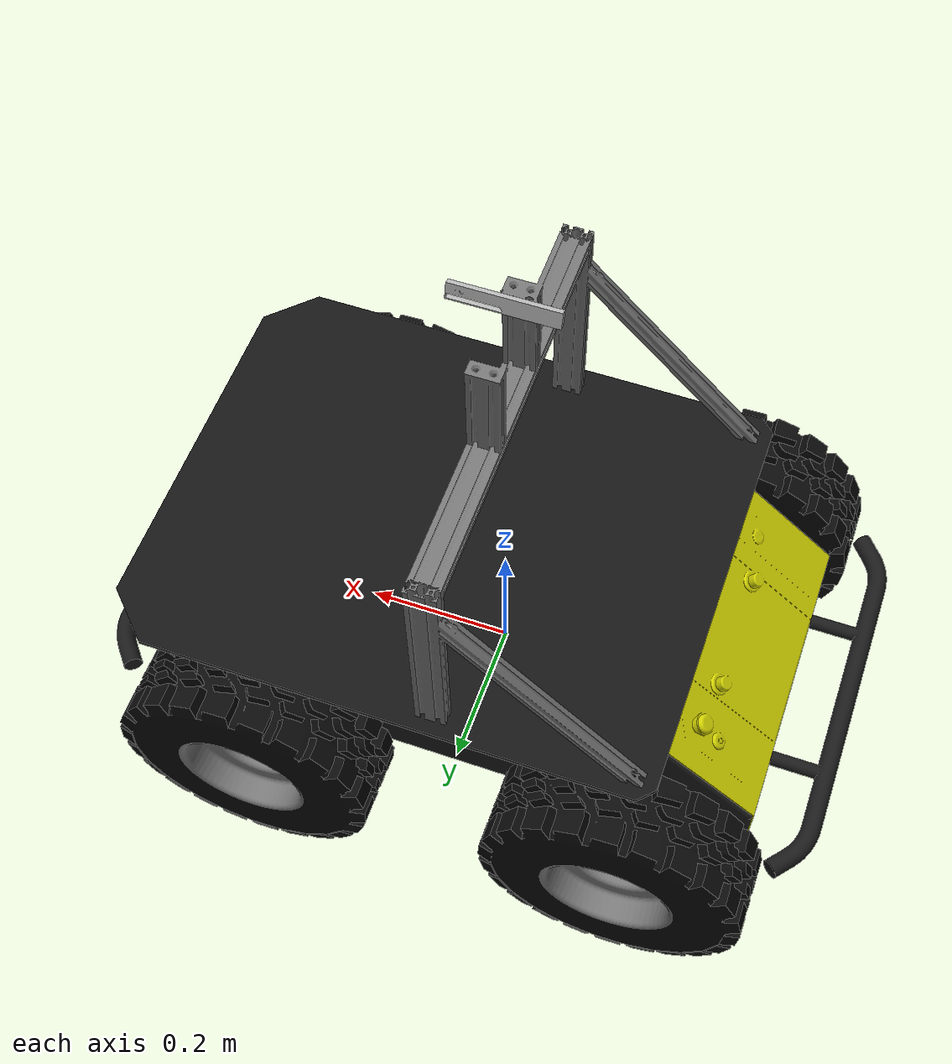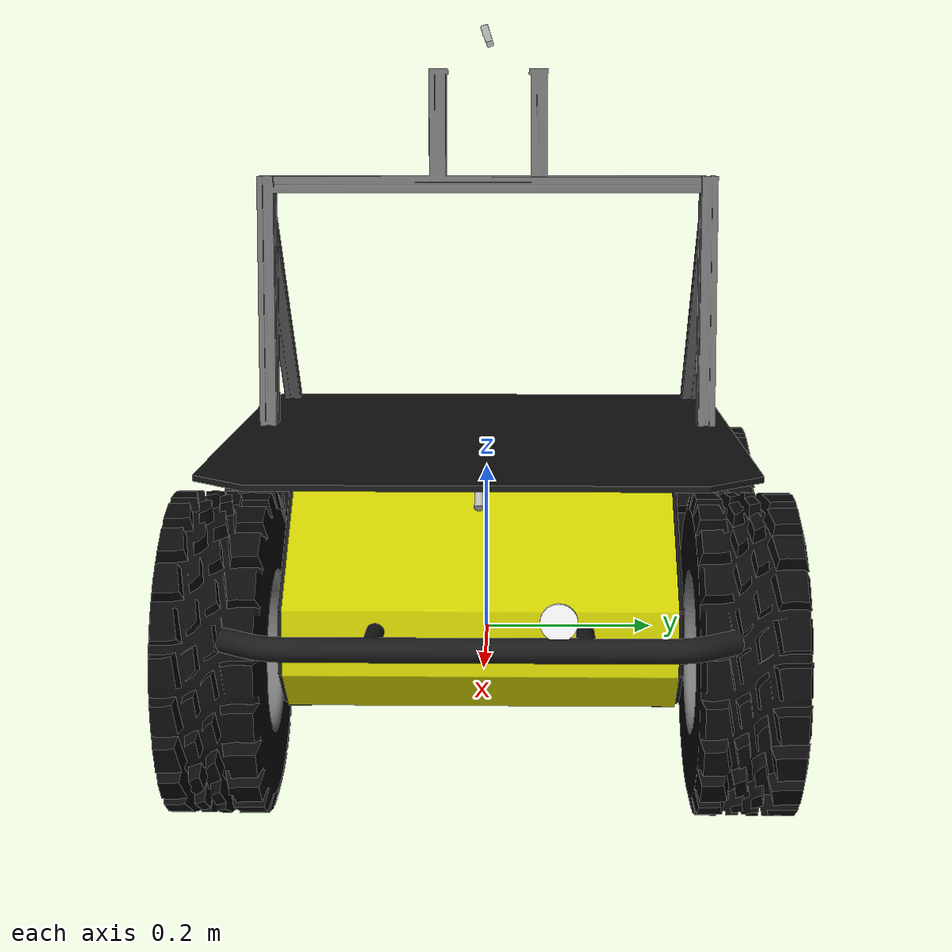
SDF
<?xml version='1.0' encoding='utf-8'?>
<sdf version="1.6">
  <model name="costar_husky_sensor_config_1">
    <link name="base_link">
      <pose frame="">0 0 0 0 -0 0</pose>
      <inertial>
        <pose frame="">0 0 0.062329 0 -0 0</pose>
        <mass>46.064</mass>
        <inertia>
          <ixx>0.615397</ixx>
          <ixy>-0.0240585</ixy>
          <ixz>-0.120749</ixz>
          <iyy>1.75388</iyy>
          <iyz>-0.0028322</iyz>
          <izz>2.03641</izz>
        </inertia>
      </inertial>
      <collision name="base_link_collision">
        <pose frame="">0 0 0.12 0 0 0</pose>
        <geometry>
          <box>
            <size>0.9874 0.5709 0.05</size>
          </box>
        </geometry>
      </collision>
      <collision name="base_link_collision_bottom">
        <pose frame="">0 0 0.046 0 0 0</pose>
        <geometry>
          <box>
            <size>0.80 0.5709 0.095</size>
          </box>
        </geometry>
      </collision>
      <collision name="base_link_collision_1">
        <pose frame="">0 0 0.185625 0 -0 0</pose>
        <geometry>
          <box>
            <size>0.78992 0.5709 0.12375</size>
          </box>
        </geometry>
      </collision>
      <collision name="base_link_fixed_joint_lump__camera/camera_link_collision_2">
        <pose frame="">0.488 0 0.272 0 -0 0</pose>
        <geometry>
          <box>
            <size>0.0078 0.13 0.0192</size>
          </box>
        </geometry>
        <surface>
          <contact>
            <ode>
              <kp>1e+13</kp>
              <kd>1</kd>
            </ode>
          </contact>
          <friction>
            <ode>
              <mu2>1</mu2>
              <fdir1>0 0 0</fdir1>
            </ode>
          </friction>
        </surface>
      </collision>
      <collision name="base_link_fixed_joint_lump__top_plate_link_collision_3">
        <pose frame="">0.0812 0 0.245 0 -0 0</pose>
        <geometry>
          <mesh>
            <scale>1 1 1</scale>
            <uri>meshes/top_plate.dae</uri>
          </mesh>
        </geometry>
      </collision>
      <collision name="base_link_fixed_joint_lump__top_plate_link_collision_4">
        <pose frame="">0.0812 0 0.245 0 -0 0</pose>
        <geometry>
          <box>
            <size>0.32 0.41 0.09</size>
          </box>
        </geometry>
      </collision>
      <visual name="base_link_visual">
        <pose frame="">0 0 0 0 -0 0</pose>
        <geometry>
          <mesh>
            <scale>1 1 1</scale>
            <uri>meshes/base_link.dae</uri>
          </mesh>
        </geometry>
      </visual>
      <visual name="base_link_fixed_joint_lump__camera/camera_link_visual_1">
        <pose frame="">0.0012 0 0.716 0 -0.3 1.57079632679</pose>
        <geometry>
          <mesh>
            <uri>meshes/realsense.dae</uri>
          </mesh>
        </geometry>
      </visual>
      <visual name="base_link_fixed_joint_lump__cliff_sensor_link_visual_2">
        <pose frame="">0.435 0 0.235 -2.35619 -0 -1.5708</pose>
        <geometry>
          <cylinder>
            <length>0.02</length>
            <radius>0.005</radius>
          </cylinder>
        </geometry>
      </visual>
      <visual name="base_link_fixed_joint_lump__front_bumper_link_visual_3">
        <pose frame="">0.48 0 0.091 0 -0 0</pose>
        <geometry>
          <mesh>
            <scale>1 1 1</scale>
            <uri>meshes/bumper.dae</uri>
          </mesh>
        </geometry>
      </visual>
      <visual name="base_link_fixed_joint_lump__rear_bumper_link_visual_4">
        <pose frame="">-0.48 0 0.091 0 -0 3.14159</pose>
        <geometry>
          <mesh>
            <scale>1 1 1</scale>
            <uri>meshes/bumper.dae</uri>
          </mesh>
        </geometry>
      </visual>
      <visual name="base_link_fixed_joint_lump__top_chassis_link_visual_5">
        <pose frame="">0 0 0 0 -0 0</pose>
        <geometry>
          <mesh>
            <scale>1 1 1</scale>
            <uri>meshes/top_chassis.dae</uri>
          </mesh>
        </geometry>
      </visual>
      <visual name="base_link_fixed_joint_lump__top_plate_link_visual_6">
        <pose frame="">0.0812 0 0.245 0 -0 0</pose>
        <geometry>
          <mesh>
            <scale>1 1 1</scale>
            <uri>meshes/top_plate.dae</uri>
          </mesh>
        </geometry>
      </visual>
      <visual name="base_link_fixed_joint_lump__arch_visual_7">
        <pose frame="">0.0012 0 0.251 0 -0 0</pose>
        <geometry>
          <mesh>
            <scale>1 1 1</scale>
            <uri>meshes/jpl04_arch_nosensor.stl</uri>
          </mesh>
        </geometry>
        <material>
          <ambient>0.8 0.8 0.8 1</ambient>
          <diffuse>0.45 0.45 0.45 1</diffuse>
          <specular>0.8 0.8 0.8 1.0</specular>
        </material>
      </visual>
      <visual name="base_link_fixed_joint_lump__user_rail_link_visual_13">
        <pose frame="">0.272 0 0.245 0 -0 0</pose>
        <geometry>
          <mesh>
            <scale>1 1 1</scale>
            <uri>meshes/user_rail.dae</uri>
          </mesh>
        </geometry>
      </visual>
      <velocity_decay />
      <self_collide>0</self_collide>
      <enable_wind>0</enable_wind>
      <kinematic>0</kinematic>
      <sensor name="camera_front" type="camera">
        <camera name="camera_front">
          <horizontal_fov>1.5708</horizontal_fov>
          <lens>
            <intrinsics>
              <!-- fx = fy = width / ( 2 * tan (hfov / 2 ) ) -->
              <!-- cx = ( width + 1 ) / 2 -->
              <cx>960.5</cx>
              <!-- cy = ( height + 1 ) / 2 -->
              <cy>540.5</cy>
              <s>0</s>
            </intrinsics>
          </lens>
          <distortion>
            <k1>0.0</k1>
            <k2>0.0</k2>
            <k3>0.0</k3>
            <p1>0.0</p1>
            <p2>0.0</p2>
            <center>0.5 0.5</center>
          </distortion>
          <image>
            <width>1920</width> <!-- initial 320 x 240 -->
            <height>1080</height>
            <format>R8G8B8</format>
          </image>
          <clip>
            <near>0.1</near>
            <far>100</far>
          </clip>
          <noise>
            <type>gaussian</type>
            <mean>0</mean>
            <stddev>0.007</stddev>
          </noise>
        </camera>
        <always_on>1</always_on>
        <update_rate>30</update_rate>
        <visualize>1</visualize>
        <pose frame="">0.0012 0 0.716 0 -0.3 1.57079632679</pose>
      </sensor>
      <gravity>1</gravity>
      <velocity_decay />
      <gravity>1</gravity>
      <velocity_decay />

      <!-- Lidar -->
      <sensor name="front_laser" type="gpu_lidar">
        <visualize>1</visualize>
        <update_rate>10</update_rate>
        <lidar>
          <scan>
            <horizontal>
              <samples>1800</samples>
              <resolution>1</resolution>
              <min_angle>-3.14159</min_angle>
              <max_angle>3.14159</max_angle>
            </horizontal>
            <vertical>
              <samples>16</samples>
              <resolution>1</resolution>
              <min_angle>-0.261799</min_angle>
              <max_angle>0.261799</max_angle>
            </vertical>
          </scan>
          <range>
            <min>0.05</min>
            <max>100</max>
            <resolution>0.01</resolution>
          </range>
          <noise>
            <type>gaussian</type>
            <mean>0</mean>
            <stddev>0.01</stddev>
          </noise>
        </lidar>
        <pose frame="">0.0012 0 0.716 0 -0 0</pose>
      </sensor>
      <velocity_decay />

      <!-- GPS -->
      <sensor name="gps" type="navsat">
        <spherical_coordinates>-34.67093619854793 -56.34362977503078 0</spherical_coordinates>
      </sensor>
      <light name="flashlight_flashlight_light_source_lamp_light" type="spot">
        <pose frame="">0.48 0.08 0.12 3.141592653589793 1.5707926535897934 -0.0015926535897931</pose>
        <attenuation>
          <range>50</range>
          <linear>0</linear>
          <constant>0.1</constant>
          <quadratic>0.0025</quadratic>
        </attenuation>
        <diffuse>0.8 0.8 0.5 1</diffuse>
        <specular>0.8 0.8 0.5 1</specular>
        <spot>
          <inner_angle>1.2</inner_angle>
          <outer_angle>1.3</outer_angle>
          <falloff>1</falloff>
        </spot>
        <direction>0 0 -1</direction>
      </light>
      <visual name="flashlight_flashlight_light_source_lamp_viz_visual">
        <pose>0.48 0.08 0.12 3.141592653589793 1.5707926535897934 -0.0015926535897931</pose>
        <geometry>
          <cylinder>
            <radius>0.019</radius>
            <length>0.005</length>
          </cylinder>
        </geometry>
        <transparency>0</transparency>
        <material>
          <ambient>1 1 1 1</ambient>
          <diffuse>1 1 1 1</diffuse>
          <specular>1 1 1 1</specular>
          <emissive>1 1 1 1</emissive>
        </material>
      </visual>

      <sensor name="imu_sensor" type="imu">
        <always_on>1</always_on>
        <update_rate>50</update_rate>
        <imu>
          <enable_orientation>0</enable_orientation>
          <angular_velocity>
            <x>
              <noise type="gaussian">
                <mean>0</mean>
                <stddev>0.009</stddev>
                <bias_mean>0.00075</bias_mean>
                <bias_stddev>0.005</bias_stddev>
                <dynamic_bias_stddev>0.00002</dynamic_bias_stddev>
                <dynamic_bias_correlation_time>400.0</dynamic_bias_correlation_time>
                <precision>0.00025</precision>
              </noise>
            </x>
            <y>
              <noise type="gaussian">
                <mean>0</mean>
                <stddev>0.009</stddev>
                <bias_mean>0.00075</bias_mean>
                <bias_stddev>0.005</bias_stddev>
                <dynamic_bias_stddev>0.00002</dynamic_bias_stddev>
                <dynamic_bias_correlation_time>400.0</dynamic_bias_correlation_time>
                <precision>0.00025</precision>
              </noise>
            </y>
            <z>
              <noise type="gaussian">
                <mean>0</mean>
                <stddev>0.009</stddev>
                <bias_mean>0.00075</bias_mean>
                <bias_stddev>0.005</bias_stddev>
                <dynamic_bias_stddev>0.00002</dynamic_bias_stddev>
                <dynamic_bias_correlation_time>400.0</dynamic_bias_correlation_time>
                <precision>0.00025</precision>
              </noise>
            </z>
          </angular_velocity>
          <linear_acceleration>
            <x>
              <noise type="gaussian">
                <mean>0</mean>
                <stddev>0.021</stddev>
                <bias_mean>0.05</bias_mean>
                <bias_stddev>0.0075</bias_stddev>
                <dynamic_bias_stddev>0.000375</dynamic_bias_stddev>
                <dynamic_bias_correlation_time>175.0</dynamic_bias_correlation_time>
                <precision>0.005</precision>
              </noise>
            </x>
            <y>
              <noise type="gaussian">
                <mean>0</mean>
                <stddev>0.021</stddev>
                <bias_mean>0.05</bias_mean>
                <bias_stddev>0.0075</bias_stddev>
                <dynamic_bias_stddev>0.000375</dynamic_bias_stddev>
                <dynamic_bias_correlation_time>175.0</dynamic_bias_correlation_time>
                <precision>0.005</precision>
              </noise>
            </y>
            <z>
              <noise type="gaussian">
                <mean>0</mean>
                <stddev>0.021</stddev>
                <bias_mean>0.05</bias_mean>
                <bias_stddev>0.0075</bias_stddev>
                <dynamic_bias_stddev>0.000375</dynamic_bias_stddev>
                <dynamic_bias_correlation_time>175.0</dynamic_bias_correlation_time>
                <precision>0.005</precision>
              </noise>
            </z>
          </linear_acceleration>
        </imu>
      </sensor>
    </link>
    <link name="front_left_wheel_link">
      <pose frame="">0.256 0.2854 0.03282 0 -0 0</pose>
      <inertial>
        <pose frame="">0 0 0 0 -0 0</pose>
        <mass>2.637</mass>
        <inertia>
          <ixx>0.02467</ixx>
          <ixy>0</ixy>
          <ixz>0</ixz>
          <iyy>0.04411</iyy>
          <iyz>0</iyz>
          <izz>0.02467</izz>
        </inertia>
      </inertial>
      <collision name="front_left_wheel_link_collision">
        <pose frame="">0 0 0 1.5707963267948966 -0 0</pose>
        <geometry>
          <cylinder>
            <length>0.1143</length>
            <radius>0.1651</radius>
          </cylinder>
        </geometry>
        <surface>
          <contact>
            <ode>
              <kp>1e+07</kp>
              <kd>1</kd>
            </ode>
          </contact>
          <friction>
            <ode>
              <mu>0.5</mu>
              <mu2>1</mu2>
              <slip1>0.00062</slip1>
              <slip2>0</slip2>
              <fdir1>0 0 1</fdir1>
            </ode>
          </friction>
        </surface>
      </collision>
      <visual name="front_left_wheel_link_visual">
        <pose frame="">0 0 0 0 -0 0</pose>
        <geometry>
          <mesh>
            <scale>1 1 1</scale>
            <uri>meshes/wheel.dae</uri>
          </mesh>
        </geometry>
      </visual>
      <gravity>1</gravity>
      <velocity_decay />
    </link>
    <joint name="front_left_wheel_joint" type="revolute">
      <child>front_left_wheel_link</child>
      <parent>base_link</parent>
      <axis>
        <xyz>0 1 0</xyz>
        <limit>
          <lower>-1e+16</lower>
          <upper>1e+16</upper>
        </limit>
        <dynamics>
          <spring_reference>0</spring_reference>
          <spring_stiffness>0</spring_stiffness>
        </dynamics>
        <use_parent_model_frame>1</use_parent_model_frame>
      </axis>
    </joint>
    <link name="front_right_wheel_link">
      <pose frame="">0.256 -0.2854 0.03282 0 -0 0</pose>
      <inertial>
        <pose frame="">0 0 0 0 -0 0</pose>
        <mass>2.637</mass>
        <inertia>
          <ixx>0.02467</ixx>
          <ixy>0</ixy>
          <ixz>0</ixz>
          <iyy>0.04411</iyy>
          <iyz>0</iyz>
          <izz>0.02467</izz>
        </inertia>
      </inertial>
      <collision name="front_right_wheel_link_collision">
        <pose frame="">0 0 0 1.5707963267948966 -0 0</pose>
        <geometry>
          <cylinder>
            <length>0.1143</length>
            <radius>0.1651</radius>
          </cylinder>
        </geometry>
        <surface>
          <contact>
            <ode>
              <kp>1e+07</kp>
              <kd>1</kd>
            </ode>
          </contact>
          <friction>
            <ode>
              <mu>0.5</mu>
              <mu2>1</mu2>
              <slip1>0.00062</slip1>
              <slip2>0</slip2>
              <fdir1>0 0 1</fdir1>
            </ode>
          </friction>
        </surface>
      </collision>
      <visual name="front_right_wheel_link_visual">
        <pose frame="">0 0 0 0 -0 0</pose>
        <geometry>
          <mesh>
            <scale>1 1 1</scale>
            <uri>meshes/wheel.dae</uri>
          </mesh>
        </geometry>
      </visual>
      <gravity>1</gravity>
      <velocity_decay />
    </link>
    <joint name="front_right_wheel_joint" type="revolute">
      <child>front_right_wheel_link</child>
      <parent>base_link</parent>
      <axis>
        <xyz>0 1 0</xyz>
        <limit>
          <lower>-1e+16</lower>
          <upper>1e+16</upper>
        </limit>
        <dynamics>
          <spring_reference>0</spring_reference>
          <spring_stiffness>0</spring_stiffness>
        </dynamics>
        <use_parent_model_frame>1</use_parent_model_frame>
      </axis>
    </joint>
    <link name="rear_left_wheel_link">
      <pose frame="">-0.256 0.2854 0.03282 0 -0 0</pose>
      <inertial>
        <pose frame="">0 0 0 0 -0 0</pose>
        <mass>2.637</mass>
        <inertia>
          <ixx>0.02467</ixx>
          <ixy>0</ixy>
          <ixz>0</ixz>
          <iyy>0.04411</iyy>
          <iyz>0</iyz>
          <izz>0.02467</izz>
        </inertia>
      </inertial>
      <collision name="rear_left_wheel_link_collision">
        <pose frame="">0 0 0 1.5707963267948966 -0 0</pose>
        <geometry>
          <cylinder>
            <length>0.1143</length>
            <radius>0.1651</radius>
          </cylinder>
        </geometry>
        <surface>
          <contact>
            <ode>
              <kp>1e+07</kp>
              <kd>1</kd>
            </ode>
          </contact>
          <friction>
            <ode>
              <mu>0.5</mu>
              <mu2>1</mu2>
              <slip1>0.00062</slip1>
              <slip2>0</slip2>
              <fdir1>0 0 1</fdir1>
            </ode>
          </friction>
        </surface>
      </collision>
      <visual name="rear_left_wheel_link_visual">
        <pose frame="">0 0 0 0 -0 0</pose>
        <geometry>
          <mesh>
            <scale>1 1 1</scale>
            <uri>meshes/wheel.dae</uri>
          </mesh>
        </geometry>
      </visual>
      <gravity>1</gravity>
      <velocity_decay />
    </link>
    <joint name="rear_left_wheel_joint" type="revolute">
      <child>rear_left_wheel_link</child>
      <parent>base_link</parent>
      <axis>
        <xyz>0 1 0</xyz>
        <limit>
          <lower>-1e+16</lower>
          <upper>1e+16</upper>
        </limit>
        <dynamics>
          <spring_reference>0</spring_reference>
          <spring_stiffness>0</spring_stiffness>
        </dynamics>
        <use_parent_model_frame>1</use_parent_model_frame>
      </axis>
    </joint>
    <link name="rear_right_wheel_link">
      <pose frame="">-0.256 -0.2854 0.03282 0 -0 0</pose>
      <inertial>
        <pose frame="">0 0 0 0 -0 0</pose>
        <mass>2.637</mass>
        <inertia>
          <ixx>0.02467</ixx>
          <ixy>0</ixy>
          <ixz>0</ixz>
          <iyy>0.04411</iyy>
          <iyz>0</iyz>
          <izz>0.02467</izz>
        </inertia>
      </inertial>
      <collision name="rear_right_wheel_link_collision">
        <pose frame="">0 0 0 1.5707963267948966 -0 0</pose>
        <geometry>
          <cylinder>
            <length>0.1143</length>
            <radius>0.1651</radius>
          </cylinder>
        </geometry>
        <surface>
          <contact>
            <ode>
              <kp>1e+07</kp>
              <kd>1</kd>
            </ode>
          </contact>
          <friction>
            <ode>
              <mu>0.5</mu>
              <mu2>1</mu2>
              <slip1>0.00062</slip1>
              <slip2>0</slip2>
              <fdir1>0 0 1</fdir1>
            </ode>
          </friction>
        </surface>
      </collision>
      <visual name="rear_right_wheel_link_visual">
        <pose frame="">0 0 0 0 -0 0</pose>
        <geometry>
          <mesh>
            <scale>1 1 1</scale>
            <uri>meshes/wheel.dae</uri>
          </mesh>
        </geometry>
      </visual>
      <gravity>1</gravity>
      <velocity_decay />
    </link>
    <joint name="rear_right_wheel_joint" type="revolute">
      <child>rear_right_wheel_link</child>
      <parent>base_link</parent>
      <axis>
        <xyz>0 1 0</xyz>
        <limit>
          <lower>-1e+16</lower>
          <upper>1e+16</upper>
        </limit>
        <dynamics>
          <spring_reference>0</spring_reference>
          <spring_stiffness>0</spring_stiffness>
        </dynamics>
        <use_parent_model_frame>1</use_parent_model_frame>
      </axis>
    </joint>
    <static>0</static>
  </model>
</sdf>
